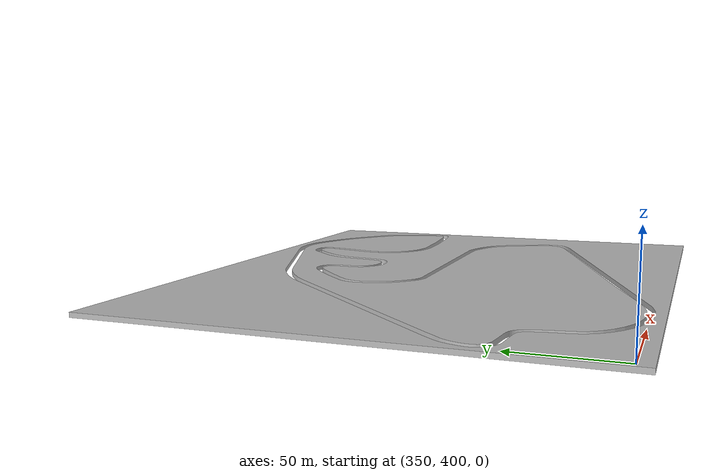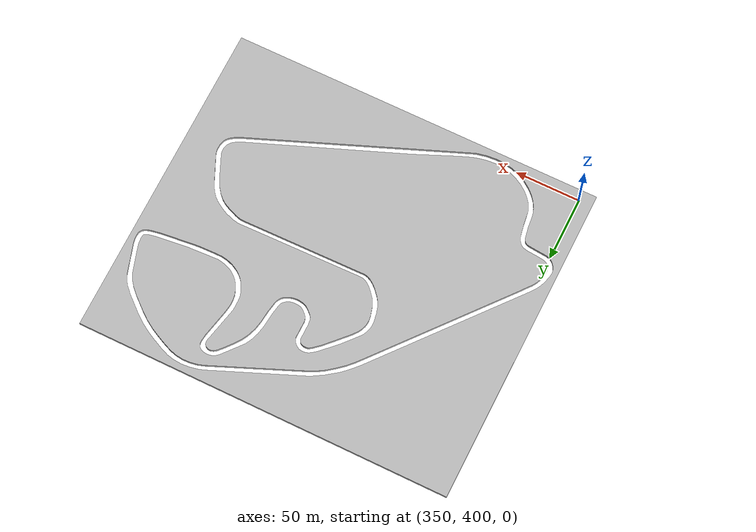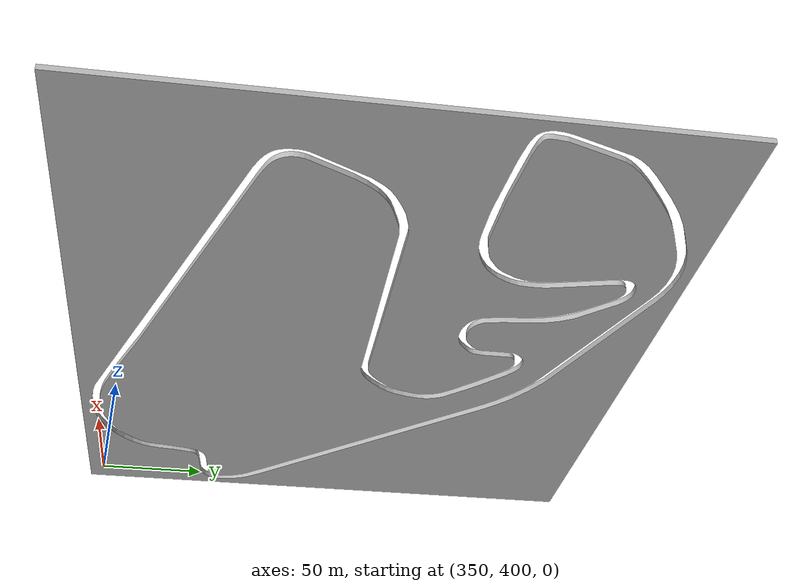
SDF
<?xml version='1.0'?>

<sdf version='1.4'>

  <model name="interlagos_track">

    <link name="link">

      <collision name="collision">
        <geometry>
          <mesh>
            <uri>model://f1tenth-sim/world/interlagos_track/interlagos_track.stl</uri>
          </mesh>
        </geometry>
      </collision>

      <visual name="visual">
        <geometry>
          <mesh>
            <uri>model://f1tenth-sim/world/interlagos_track/interlagos_track.stl</uri>
          </mesh>
        </geometry>
      </visual>

    </link>

    <static>1</static>

  </model>

</sdf>
